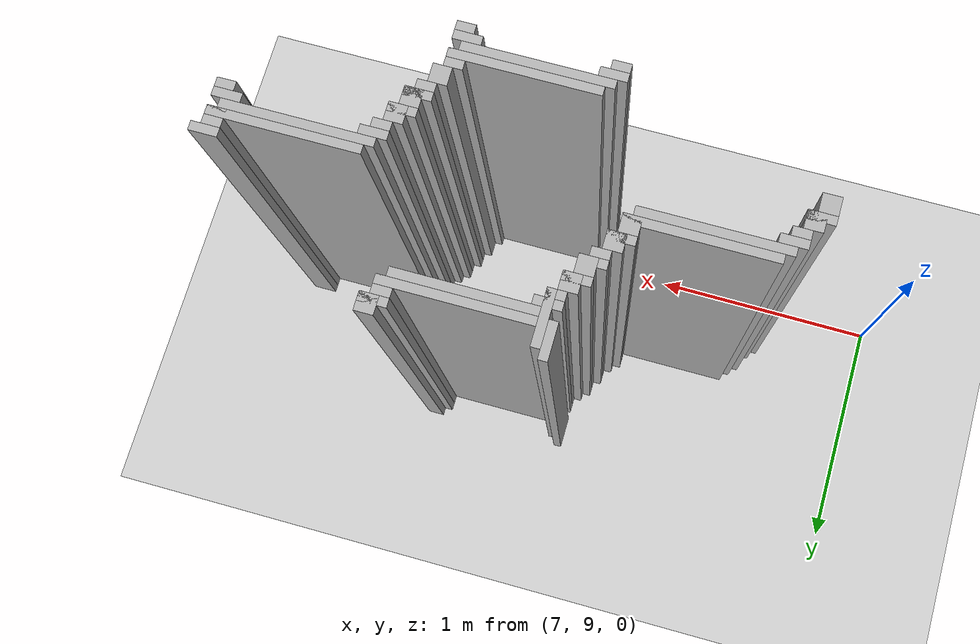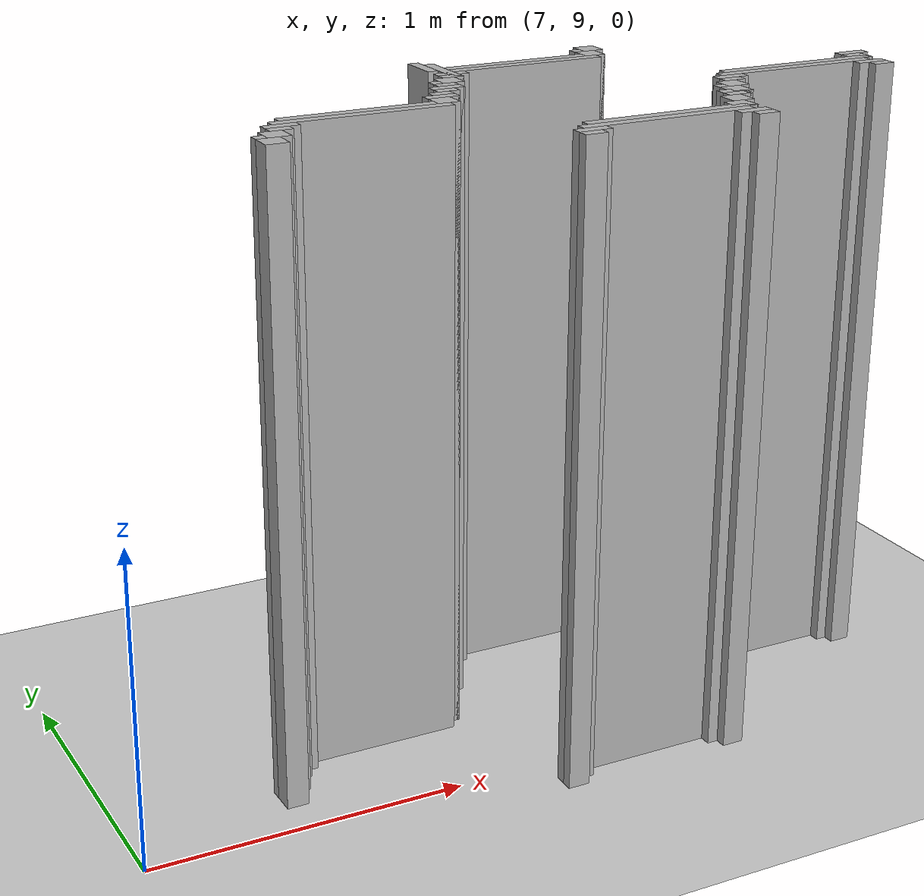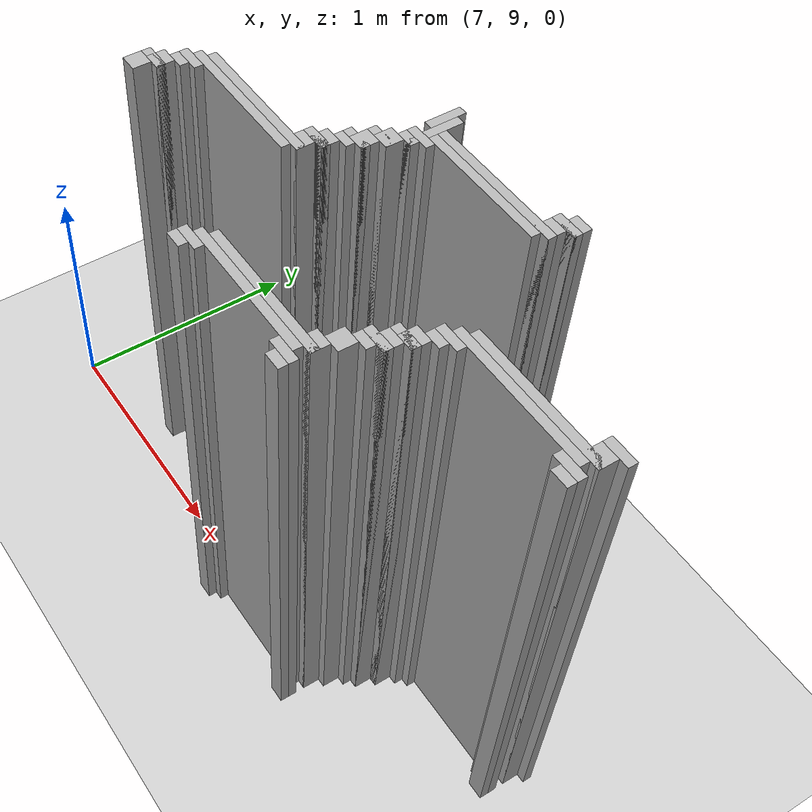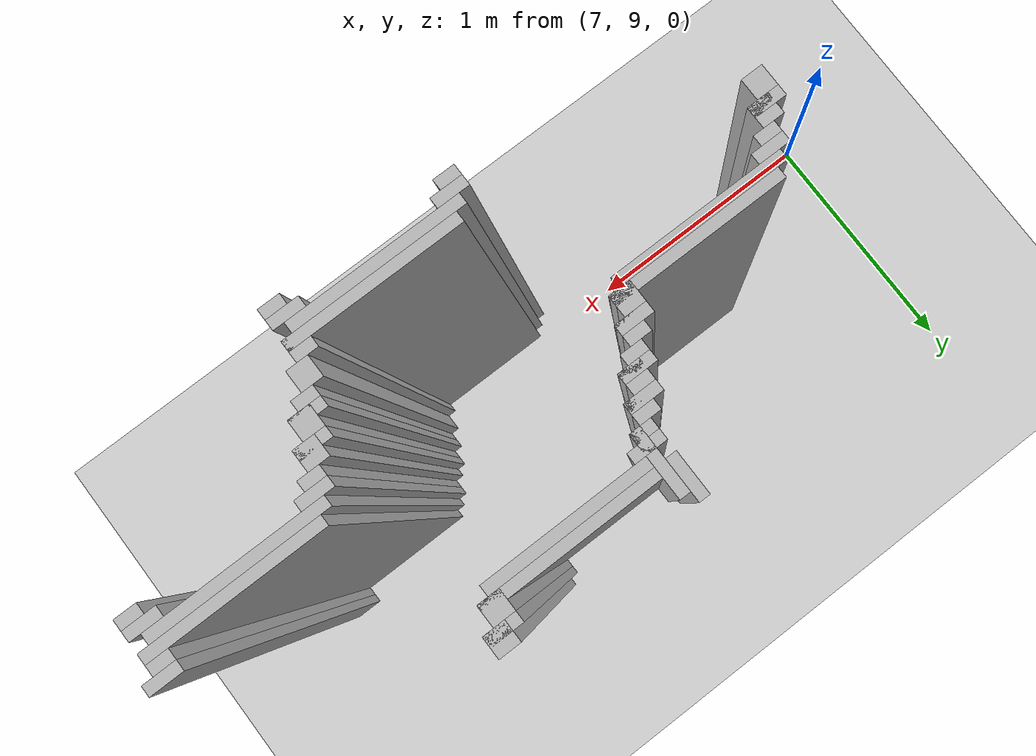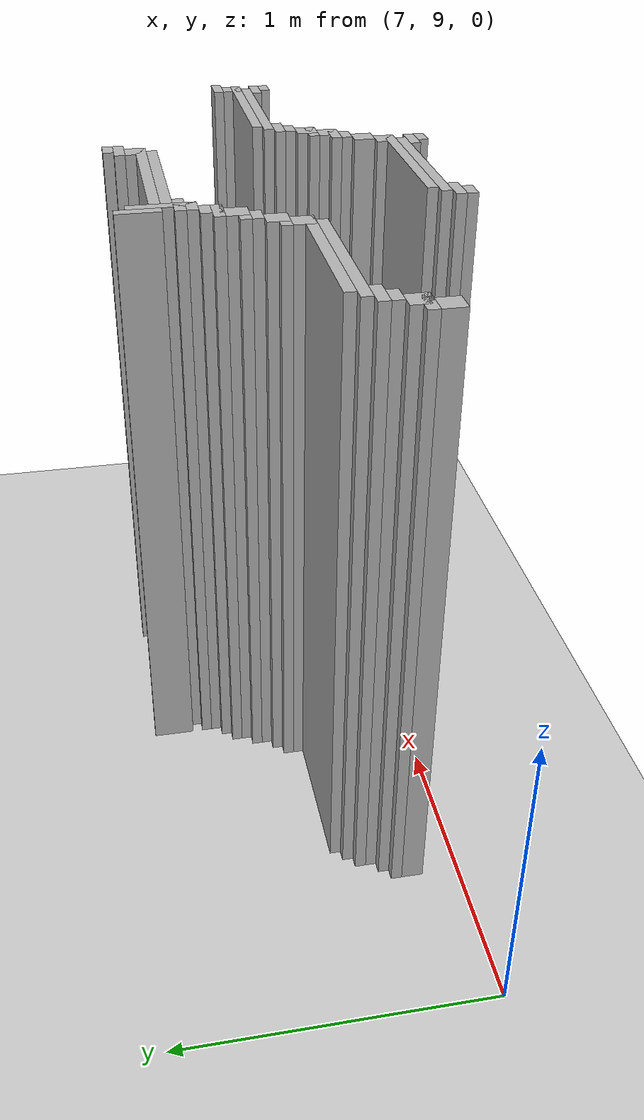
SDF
<sdf version="1.6">
 <world name="slam_world">
  <model name="ground_plane">
   <static>true</static>
   <link name="link">
    <collision name="collision">
     <geometry><plane><normal>0 0 1</normal><size>100 100</size></plane></geometry>
    </collision>
    <visual name="visual">
     <geometry><plane><normal>0 0 1</normal><size>100 100</size></plane></geometry>
     <material>
      <ambient>0.8 0.8 0.8 1</ambient>
      <diffuse>0.8 0.8 0.8 1</diffuse>
      <specular>0.8 0.8 0.8 1</specular>
     </material>
    </visual>
   </link>
  </model>
  <model name="wall_2489">
   <static>true</static>
   <pose>8.30046403712297 9.849187935034802 1.0 0 0 0</pose>
   <link name="link">
    <collision name="collision">
     <geometry><box><size>0.03480278422273782 0.13921113689095127 2.0</size></box></geometry>
    </collision>
    <visual name="visual">
     <geometry><box><size>0.03480278422273782 0.13921113689095127 2.0</size></box></geometry>
     <material><ambient>0.5 0.5 0.5 1</ambient><diffuse>0.7 0.7 0.7 1</diffuse></material>
    </visual>
   </link>
  </model>
  <model name="wall_2490">
   <static>true</static>
   <pose>8.909512761020881 9.88399071925754 1.0 0 0 0</pose>
   <link name="link">
    <collision name="collision">
     <geometry><box><size>0.06960556844547564 0.06960556844547564 2.0</size></box></geometry>
    </collision>
    <visual name="visual">
     <geometry><box><size>0.06960556844547564 0.06960556844547564 2.0</size></box></geometry>
     <material><ambient>0.5 0.5 0.5 1</ambient><diffuse>0.7 0.7 0.7 1</diffuse></material>
    </visual>
   </link>
  </model>
  <model name="wall_2503">
   <static>true</static>
   <pose>8.335266821345707 9.779582366589327 1.0 0 0 0</pose>
   <link name="link">
    <collision name="collision">
     <geometry><box><size>0.03480278422273782 0.2088167053364269 2.0</size></box></geometry>
    </collision>
    <visual name="visual">
     <geometry><box><size>0.03480278422273782 0.2088167053364269 2.0</size></box></geometry>
     <material><ambient>0.5 0.5 0.5 1</ambient><diffuse>0.7 0.7 0.7 1</diffuse></material>
    </visual>
   </link>
  </model>
  <model name="wall_2504">
   <static>true</static>
   <pose>8.892111368909513 9.86658932714617 1.0 0 0 0</pose>
   <link name="link">
    <collision name="collision">
     <geometry><box><size>0.10440835266821345 0.03480278422273782 2.0</size></box></geometry>
    </collision>
    <visual name="visual">
     <geometry><box><size>0.10440835266821345 0.03480278422273782 2.0</size></box></geometry>
     <material><ambient>0.5 0.5 0.5 1</ambient><diffuse>0.7 0.7 0.7 1</diffuse></material>
    </visual>
   </link>
  </model>
  <model name="wall_2515">
   <static>true</static>
   <pose>8.874709976798144 9.814385150812065 1.0 0 0 0</pose>
   <link name="link">
    <collision name="collision">
     <geometry><box><size>0.06960556844547564 0.06960556844547564 2.0</size></box></geometry>
    </collision>
    <visual name="visual">
     <geometry><box><size>0.06960556844547564 0.06960556844547564 2.0</size></box></geometry>
     <material><ambient>0.5 0.5 0.5 1</ambient><diffuse>0.7 0.7 0.7 1</diffuse></material>
    </visual>
   </link>
  </model>
  <model name="wall_2526">
   <static>true</static>
   <pose>8.631090487238978 9.796983758700696 1.0 0 0 0</pose>
   <link name="link">
    <collision name="collision">
     <geometry><box><size>0.5568445475638051 0.03480278422273782 2.0</size></box></geometry>
    </collision>
    <visual name="visual">
     <geometry><box><size>0.5568445475638051 0.03480278422273782 2.0</size></box></geometry>
     <material><ambient>0.5 0.5 0.5 1</ambient><diffuse>0.7 0.7 0.7 1</diffuse></material>
    </visual>
   </link>
  </model>
  <model name="wall_2537">
   <static>true</static>
   <pose>8.61368909512761 9.762180974477959 1.0 0 0 0</pose>
   <link name="link">
    <collision name="collision">
     <geometry><box><size>0.5220417633410672 0.03480278422273782 2.0</size></box></geometry>
    </collision>
    <visual name="visual">
     <geometry><box><size>0.5220417633410672 0.03480278422273782 2.0</size></box></geometry>
     <material><ambient>0.5 0.5 0.5 1</ambient><diffuse>0.7 0.7 0.7 1</diffuse></material>
    </visual>
   </link>
  </model>
  <model name="wall_2546">
   <static>true</static>
   <pose>8.335266821345707 9.72737819025522 1.0 0 0 0</pose>
   <link name="link">
    <collision name="collision">
     <geometry><box><size>0.10440835266821345 0.03480278422273782 2.0</size></box></geometry>
    </collision>
    <visual name="visual">
     <geometry><box><size>0.10440835266821345 0.03480278422273782 2.0</size></box></geometry>
     <material><ambient>0.5 0.5 0.5 1</ambient><diffuse>0.7 0.7 0.7 1</diffuse></material>
    </visual>
   </link>
  </model>
  <model name="wall_2555">
   <static>true</static>
   <pose>8.317865429234338 9.692575406032482 1.0 0 0 0</pose>
   <link name="link">
    <collision name="collision">
     <geometry><box><size>0.06960556844547564 0.03480278422273782 2.0</size></box></geometry>
    </collision>
    <visual name="visual">
     <geometry><box><size>0.06960556844547564 0.03480278422273782 2.0</size></box></geometry>
     <material><ambient>0.5 0.5 0.5 1</ambient><diffuse>0.7 0.7 0.7 1</diffuse></material>
    </visual>
   </link>
  </model>
  <model name="wall_2563">
   <static>true</static>
   <pose>8.2830626450116 9.640371229698376 1.0 0 0 0</pose>
   <link name="link">
    <collision name="collision">
     <geometry><box><size>0.06960556844547564 0.06960556844547564 2.0</size></box></geometry>
    </collision>
    <visual name="visual">
     <geometry><box><size>0.06960556844547564 0.06960556844547564 2.0</size></box></geometry>
     <material><ambient>0.5 0.5 0.5 1</ambient><diffuse>0.7 0.7 0.7 1</diffuse></material>
    </visual>
   </link>
  </model>
  <model name="wall_2574">
   <static>true</static>
   <pose>8.265661252900232 9.622969837587007 1.0 0 0 0</pose>
   <link name="link">
    <collision name="collision">
     <geometry><box><size>0.10440835266821345 0.03480278422273782 2.0</size></box></geometry>
    </collision>
    <visual name="visual">
     <geometry><box><size>0.10440835266821345 0.03480278422273782 2.0</size></box></geometry>
     <material><ambient>0.5 0.5 0.5 1</ambient><diffuse>0.7 0.7 0.7 1</diffuse></material>
    </visual>
   </link>
  </model>
  <model name="wall_2585">
   <static>true</static>
   <pose>8.248259860788863 9.5707656612529 1.0 0 0 0</pose>
   <link name="link">
    <collision name="collision">
     <geometry><box><size>0.06960556844547564 0.06960556844547564 2.0</size></box></geometry>
    </collision>
    <visual name="visual">
     <geometry><box><size>0.06960556844547564 0.06960556844547564 2.0</size></box></geometry>
     <material><ambient>0.5 0.5 0.5 1</ambient><diffuse>0.7 0.7 0.7 1</diffuse></material>
    </visual>
   </link>
  </model>
  <model name="wall_2596">
   <static>true</static>
   <pose>8.230858468677495 9.55336426914153 1.0 0 0 0</pose>
   <link name="link">
    <collision name="collision">
     <geometry><box><size>0.10440835266821345 0.03480278422273782 2.0</size></box></geometry>
    </collision>
    <visual name="visual">
     <geometry><box><size>0.10440835266821345 0.03480278422273782 2.0</size></box></geometry>
     <material><ambient>0.5 0.5 0.5 1</ambient><diffuse>0.7 0.7 0.7 1</diffuse></material>
    </visual>
   </link>
  </model>
  <model name="wall_2603">
   <static>true</static>
   <pose>8.213457076566124 9.518561484918793 1.0 0 0 0</pose>
   <link name="link">
    <collision name="collision">
     <geometry><box><size>0.06960556844547564 0.03480278422273782 2.0</size></box></geometry>
    </collision>
    <visual name="visual">
     <geometry><box><size>0.06960556844547564 0.03480278422273782 2.0</size></box></geometry>
     <material><ambient>0.5 0.5 0.5 1</ambient><diffuse>0.7 0.7 0.7 1</diffuse></material>
    </visual>
   </link>
  </model>
  <model name="wall_2611">
   <static>true</static>
   <pose>8.178654292343387 9.466357308584687 1.0 0 0 0</pose>
   <link name="link">
    <collision name="collision">
     <geometry><box><size>0.06960556844547564 0.06960556844547564 2.0</size></box></geometry>
    </collision>
    <visual name="visual">
     <geometry><box><size>0.06960556844547564 0.06960556844547564 2.0</size></box></geometry>
     <material><ambient>0.5 0.5 0.5 1</ambient><diffuse>0.7 0.7 0.7 1</diffuse></material>
    </visual>
   </link>
  </model>
  <model name="wall_2622">
   <static>true</static>
   <pose>8.161252900232018 9.448955916473318 1.0 0 0 0</pose>
   <link name="link">
    <collision name="collision">
     <geometry><box><size>0.10440835266821345 0.03480278422273782 2.0</size></box></geometry>
    </collision>
    <visual name="visual">
     <geometry><box><size>0.10440835266821345 0.03480278422273782 2.0</size></box></geometry>
     <material><ambient>0.5 0.5 0.5 1</ambient><diffuse>0.7 0.7 0.7 1</diffuse></material>
    </visual>
   </link>
  </model>
  <model name="wall_2623">
   <static>true</static>
   <pose>9.622969837587007 9.448955916473318 1.0 0 0 0</pose>
   <link name="link">
    <collision name="collision">
     <geometry><box><size>0.10440835266821345 0.03480278422273782 2.0</size></box></geometry>
    </collision>
    <visual name="visual">
     <geometry><box><size>0.10440835266821345 0.03480278422273782 2.0</size></box></geometry>
     <material><ambient>0.5 0.5 0.5 1</ambient><diffuse>0.7 0.7 0.7 1</diffuse></material>
    </visual>
   </link>
  </model>
  <model name="wall_2629">
   <static>true</static>
   <pose>8.14385150812065 9.39675174013921 1.0 0 0 0</pose>
   <link name="link">
    <collision name="collision">
     <geometry><box><size>0.06960556844547564 0.06960556844547564 2.0</size></box></geometry>
    </collision>
    <visual name="visual">
     <geometry><box><size>0.06960556844547564 0.06960556844547564 2.0</size></box></geometry>
     <material><ambient>0.5 0.5 0.5 1</ambient><diffuse>0.7 0.7 0.7 1</diffuse></material>
    </visual>
   </link>
  </model>
  <model name="wall_2630">
   <static>true</static>
   <pose>9.605568445475638 9.39675174013921 1.0 0 0 0</pose>
   <link name="link">
    <collision name="collision">
     <geometry><box><size>0.06960556844547564 0.06960556844547564 2.0</size></box></geometry>
    </collision>
    <visual name="visual">
     <geometry><box><size>0.06960556844547564 0.06960556844547564 2.0</size></box></geometry>
     <material><ambient>0.5 0.5 0.5 1</ambient><diffuse>0.7 0.7 0.7 1</diffuse></material>
    </visual>
   </link>
  </model>
  <model name="wall_2637">
   <static>true</static>
   <pose>7.900232018561485 9.379350348027842 1.0 0 0 0</pose>
   <link name="link">
    <collision name="collision">
     <geometry><box><size>0.5568445475638051 0.03480278422273782 2.0</size></box></geometry>
    </collision>
    <visual name="visual">
     <geometry><box><size>0.5568445475638051 0.03480278422273782 2.0</size></box></geometry>
     <material><ambient>0.5 0.5 0.5 1</ambient><diffuse>0.7 0.7 0.7 1</diffuse></material>
    </visual>
   </link>
  </model>
  <model name="wall_2638">
   <static>true</static>
   <pose>9.361948955916473 9.379350348027842 1.0 0 0 0</pose>
   <link name="link">
    <collision name="collision">
     <geometry><box><size>0.5568445475638051 0.03480278422273782 2.0</size></box></geometry>
    </collision>
    <visual name="visual">
     <geometry><box><size>0.5568445475638051 0.03480278422273782 2.0</size></box></geometry>
     <material><ambient>0.5 0.5 0.5 1</ambient><diffuse>0.7 0.7 0.7 1</diffuse></material>
    </visual>
   </link>
  </model>
  <model name="wall_2648">
   <static>true</static>
   <pose>7.865429234338746 9.344547563805104 1.0 0 0 0</pose>
   <link name="link">
    <collision name="collision">
     <geometry><box><size>0.5568445475638051 0.03480278422273782 2.0</size></box></geometry>
    </collision>
    <visual name="visual">
     <geometry><box><size>0.5568445475638051 0.03480278422273782 2.0</size></box></geometry>
     <material><ambient>0.5 0.5 0.5 1</ambient><diffuse>0.7 0.7 0.7 1</diffuse></material>
    </visual>
   </link>
  </model>
  <model name="wall_2649">
   <static>true</static>
   <pose>9.327146171693736 9.344547563805104 1.0 0 0 0</pose>
   <link name="link">
    <collision name="collision">
     <geometry><box><size>0.5568445475638051 0.03480278422273782 2.0</size></box></geometry>
    </collision>
    <visual name="visual">
     <geometry><box><size>0.5568445475638051 0.03480278422273782 2.0</size></box></geometry>
     <material><ambient>0.5 0.5 0.5 1</ambient><diffuse>0.7 0.7 0.7 1</diffuse></material>
    </visual>
   </link>
  </model>
  <model name="wall_2662">
   <static>true</static>
   <pose>7.604408352668213 9.309744779582367 1.0 0 0 0</pose>
   <link name="link">
    <collision name="collision">
     <geometry><box><size>0.10440835266821345 0.03480278422273782 2.0</size></box></geometry>
    </collision>
    <visual name="visual">
     <geometry><box><size>0.10440835266821345 0.03480278422273782 2.0</size></box></geometry>
     <material><ambient>0.5 0.5 0.5 1</ambient><diffuse>0.7 0.7 0.7 1</diffuse></material>
    </visual>
   </link>
  </model>
  <model name="wall_2663">
   <static>true</static>
   <pose>9.066125290023201 9.309744779582367 1.0 0 0 0</pose>
   <link name="link">
    <collision name="collision">
     <geometry><box><size>0.10440835266821345 0.03480278422273782 2.0</size></box></geometry>
    </collision>
    <visual name="visual">
     <geometry><box><size>0.10440835266821345 0.03480278422273782 2.0</size></box></geometry>
     <material><ambient>0.5 0.5 0.5 1</ambient><diffuse>0.7 0.7 0.7 1</diffuse></material>
    </visual>
   </link>
  </model>
  <model name="wall_2664">
   <static>true</static>
   <pose>9.588167053364268 9.309744779582367 1.0 0 0 0</pose>
   <link name="link">
    <collision name="collision">
     <geometry><box><size>0.10440835266821345 0.03480278422273782 2.0</size></box></geometry>
    </collision>
    <visual name="visual">
     <geometry><box><size>0.10440835266821345 0.03480278422273782 2.0</size></box></geometry>
     <material><ambient>0.5 0.5 0.5 1</ambient><diffuse>0.7 0.7 0.7 1</diffuse></material>
    </visual>
   </link>
  </model>
  <model name="wall_2681">
   <static>true</static>
   <pose>7.587006960556844 9.274941995359628 1.0 0 0 0</pose>
   <link name="link">
    <collision name="collision">
     <geometry><box><size>0.06960556844547564 0.03480278422273782 2.0</size></box></geometry>
    </collision>
    <visual name="visual">
     <geometry><box><size>0.06960556844547564 0.03480278422273782 2.0</size></box></geometry>
     <material><ambient>0.5 0.5 0.5 1</ambient><diffuse>0.7 0.7 0.7 1</diffuse></material>
    </visual>
   </link>
  </model>
  <model name="wall_2682">
   <static>true</static>
   <pose>9.048723897911833 9.274941995359628 1.0 0 0 0</pose>
   <link name="link">
    <collision name="collision">
     <geometry><box><size>0.06960556844547564 0.03480278422273782 2.0</size></box></geometry>
    </collision>
    <visual name="visual">
     <geometry><box><size>0.06960556844547564 0.03480278422273782 2.0</size></box></geometry>
     <material><ambient>0.5 0.5 0.5 1</ambient><diffuse>0.7 0.7 0.7 1</diffuse></material>
    </visual>
   </link>
  </model>
  <model name="wall_2683">
   <static>true</static>
   <pose>9.605568445475638 9.274941995359628 1.0 0 0 0</pose>
   <link name="link">
    <collision name="collision">
     <geometry><box><size>0.06960556844547564 0.03480278422273782 2.0</size></box></geometry>
    </collision>
    <visual name="visual">
     <geometry><box><size>0.06960556844547564 0.03480278422273782 2.0</size></box></geometry>
     <material><ambient>0.5 0.5 0.5 1</ambient><diffuse>0.7 0.7 0.7 1</diffuse></material>
    </visual>
   </link>
  </model>
  <model name="wall_2699">
   <static>true</static>
   <pose>7.552204176334106 9.222737819025522 1.0 0 0 0</pose>
   <link name="link">
    <collision name="collision">
     <geometry><box><size>0.06960556844547564 0.06960556844547564 2.0</size></box></geometry>
    </collision>
    <visual name="visual">
     <geometry><box><size>0.06960556844547564 0.06960556844547564 2.0</size></box></geometry>
     <material><ambient>0.5 0.5 0.5 1</ambient><diffuse>0.7 0.7 0.7 1</diffuse></material>
    </visual>
   </link>
  </model>
  <model name="wall_2700">
   <static>true</static>
   <pose>9.013921113689095 9.222737819025522 1.0 0 0 0</pose>
   <link name="link">
    <collision name="collision">
     <geometry><box><size>0.06960556844547564 0.06960556844547564 2.0</size></box></geometry>
    </collision>
    <visual name="visual">
     <geometry><box><size>0.06960556844547564 0.06960556844547564 2.0</size></box></geometry>
     <material><ambient>0.5 0.5 0.5 1</ambient><diffuse>0.7 0.7 0.7 1</diffuse></material>
    </visual>
   </link>
  </model>
  <model name="wall_2718">
   <static>true</static>
   <pose>7.534802784222737 9.205336426914153 1.0 0 0 0</pose>
   <link name="link">
    <collision name="collision">
     <geometry><box><size>0.10440835266821345 0.03480278422273782 2.0</size></box></geometry>
    </collision>
    <visual name="visual">
     <geometry><box><size>0.10440835266821345 0.03480278422273782 2.0</size></box></geometry>
     <material><ambient>0.5 0.5 0.5 1</ambient><diffuse>0.7 0.7 0.7 1</diffuse></material>
    </visual>
   </link>
  </model>
  <model name="wall_2719">
   <static>true</static>
   <pose>8.996519721577727 9.205336426914153 1.0 0 0 0</pose>
   <link name="link">
    <collision name="collision">
     <geometry><box><size>0.10440835266821345 0.03480278422273782 2.0</size></box></geometry>
    </collision>
    <visual name="visual">
     <geometry><box><size>0.10440835266821345 0.03480278422273782 2.0</size></box></geometry>
     <material><ambient>0.5 0.5 0.5 1</ambient><diffuse>0.7 0.7 0.7 1</diffuse></material>
    </visual>
   </link>
  </model>
  <model name="wall_2734">
   <static>true</static>
   <pose>7.517401392111369 9.153132250580047 1.0 0 0 0</pose>
   <link name="link">
    <collision name="collision">
     <geometry><box><size>0.06960556844547564 0.06960556844547564 2.0</size></box></geometry>
    </collision>
    <visual name="visual">
     <geometry><box><size>0.06960556844547564 0.06960556844547564 2.0</size></box></geometry>
     <material><ambient>0.5 0.5 0.5 1</ambient><diffuse>0.7 0.7 0.7 1</diffuse></material>
    </visual>
   </link>
  </model>
  <model name="wall_2735">
   <static>true</static>
   <pose>8.979118329466356 9.153132250580047 1.0 0 0 0</pose>
   <link name="link">
    <collision name="collision">
     <geometry><box><size>0.06960556844547564 0.06960556844547564 2.0</size></box></geometry>
    </collision>
    <visual name="visual">
     <geometry><box><size>0.06960556844547564 0.06960556844547564 2.0</size></box></geometry>
     <material><ambient>0.5 0.5 0.5 1</ambient><diffuse>0.7 0.7 0.7 1</diffuse></material>
    </visual>
   </link>
  </model>
  <model name="wall_2753">
   <static>true</static>
   <pose>8.961716937354987 9.135730858468676 1.0 0 0 0</pose>
   <link name="link">
    <collision name="collision">
     <geometry><box><size>0.10440835266821345 0.03480278422273782 2.0</size></box></geometry>
    </collision>
    <visual name="visual">
     <geometry><box><size>0.10440835266821345 0.03480278422273782 2.0</size></box></geometry>
     <material><ambient>0.5 0.5 0.5 1</ambient><diffuse>0.7 0.7 0.7 1</diffuse></material>
    </visual>
   </link>
  </model>
  <model name="wall_2767">
   <static>true</static>
   <pose>8.944315545243619 9.100928074245939 1.0 0 0 0</pose>
   <link name="link">
    <collision name="collision">
     <geometry><box><size>0.06960556844547564 0.03480278422273782 2.0</size></box></geometry>
    </collision>
    <visual name="visual">
     <geometry><box><size>0.06960556844547564 0.03480278422273782 2.0</size></box></geometry>
     <material><ambient>0.5 0.5 0.5 1</ambient><diffuse>0.7 0.7 0.7 1</diffuse></material>
    </visual>
   </link>
  </model>
  <model name="wall_2782">
   <static>true</static>
   <pose>8.909512761020881 9.048723897911833 1.0 0 0 0</pose>
   <link name="link">
    <collision name="collision">
     <geometry><box><size>0.06960556844547564 0.06960556844547564 2.0</size></box></geometry>
    </collision>
    <visual name="visual">
     <geometry><box><size>0.06960556844547564 0.06960556844547564 2.0</size></box></geometry>
     <material><ambient>0.5 0.5 0.5 1</ambient><diffuse>0.7 0.7 0.7 1</diffuse></material>
    </visual>
   </link>
  </model>
  <model name="wall_2801">
   <static>true</static>
   <pose>8.874709976798144 8.979118329466356 1.0 0 0 0</pose>
   <link name="link">
    <collision name="collision">
     <geometry><box><size>0.06960556844547564 0.06960556844547564 2.0</size></box></geometry>
    </collision>
    <visual name="visual">
     <geometry><box><size>0.06960556844547564 0.06960556844547564 2.0</size></box></geometry>
     <material><ambient>0.5 0.5 0.5 1</ambient><diffuse>0.7 0.7 0.7 1</diffuse></material>
    </visual>
   </link>
  </model>
  <model name="wall_2819">
   <static>true</static>
   <pose>8.631090487238978 8.961716937354987 1.0 0 0 0</pose>
   <link name="link">
    <collision name="collision">
     <geometry><box><size>0.5568445475638051 0.03480278422273782 2.0</size></box></geometry>
    </collision>
    <visual name="visual">
     <geometry><box><size>0.5568445475638051 0.03480278422273782 2.0</size></box></geometry>
     <material><ambient>0.5 0.5 0.5 1</ambient><diffuse>0.7 0.7 0.7 1</diffuse></material>
    </visual>
   </link>
  </model>
  <model name="wall_2832">
   <static>true</static>
   <pose>8.596287703016241 8.92691415313225 1.0 0 0 0</pose>
   <link name="link">
    <collision name="collision">
     <geometry><box><size>0.5568445475638051 0.03480278422273782 2.0</size></box></geometry>
    </collision>
    <visual name="visual">
     <geometry><box><size>0.5568445475638051 0.03480278422273782 2.0</size></box></geometry>
     <material><ambient>0.5 0.5 0.5 1</ambient><diffuse>0.7 0.7 0.7 1</diffuse></material>
    </visual>
   </link>
  </model>
  <model name="wall_2847">
   <static>true</static>
   <pose>8.335266821345707 8.892111368909513 1.0 0 0 0</pose>
   <link name="link">
    <collision name="collision">
     <geometry><box><size>0.10440835266821345 0.03480278422273782 2.0</size></box></geometry>
    </collision>
    <visual name="visual">
     <geometry><box><size>0.10440835266821345 0.03480278422273782 2.0</size></box></geometry>
     <material><ambient>0.5 0.5 0.5 1</ambient><diffuse>0.7 0.7 0.7 1</diffuse></material>
    </visual>
   </link>
  </model>
  <model name="wall_2848">
   <static>true</static>
   <pose>8.857308584686775 8.892111368909513 1.0 0 0 0</pose>
   <link name="link">
    <collision name="collision">
     <geometry><box><size>0.10440835266821345 0.03480278422273782 2.0</size></box></geometry>
    </collision>
    <visual name="visual">
     <geometry><box><size>0.10440835266821345 0.03480278422273782 2.0</size></box></geometry>
     <material><ambient>0.5 0.5 0.5 1</ambient><diffuse>0.7 0.7 0.7 1</diffuse></material>
    </visual>
   </link>
  </model>
  <model name="wall_2862">
   <static>true</static>
   <pose>8.317865429234338 8.857308584686775 1.0 0 0 0</pose>
   <link name="link">
    <collision name="collision">
     <geometry><box><size>0.06960556844547564 0.03480278422273782 2.0</size></box></geometry>
    </collision>
    <visual name="visual">
     <geometry><box><size>0.06960556844547564 0.03480278422273782 2.0</size></box></geometry>
     <material><ambient>0.5 0.5 0.5 1</ambient><diffuse>0.7 0.7 0.7 1</diffuse></material>
    </visual>
   </link>
  </model>
  <model name="wall_2863">
   <static>true</static>
   <pose>8.874709976798144 8.857308584686775 1.0 0 0 0</pose>
   <link name="link">
    <collision name="collision">
     <geometry><box><size>0.06960556844547564 0.03480278422273782 2.0</size></box></geometry>
    </collision>
    <visual name="visual">
     <geometry><box><size>0.06960556844547564 0.03480278422273782 2.0</size></box></geometry>
     <material><ambient>0.5 0.5 0.5 1</ambient><diffuse>0.7 0.7 0.7 1</diffuse></material>
    </visual>
   </link>
  </model>
 </world>
</sdf>
